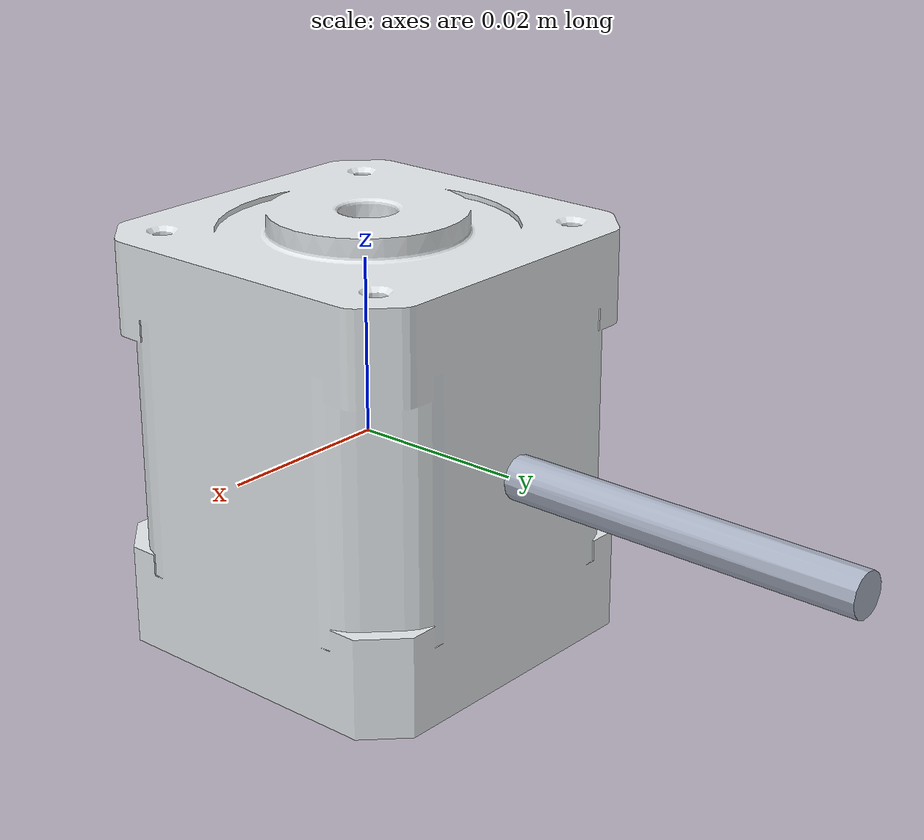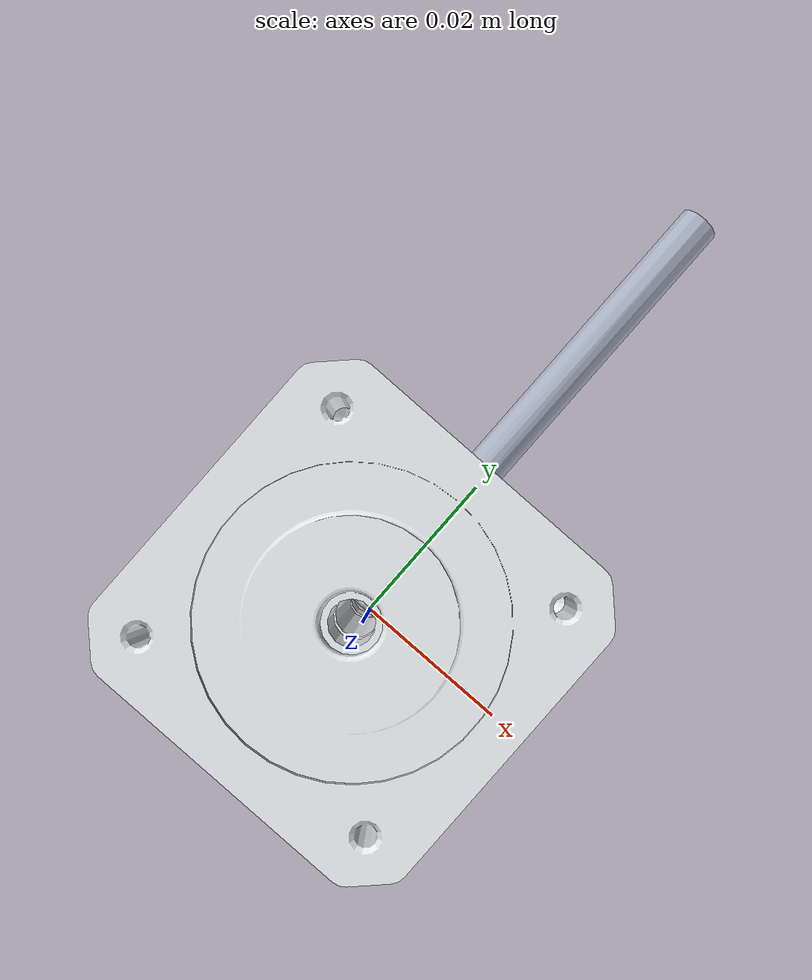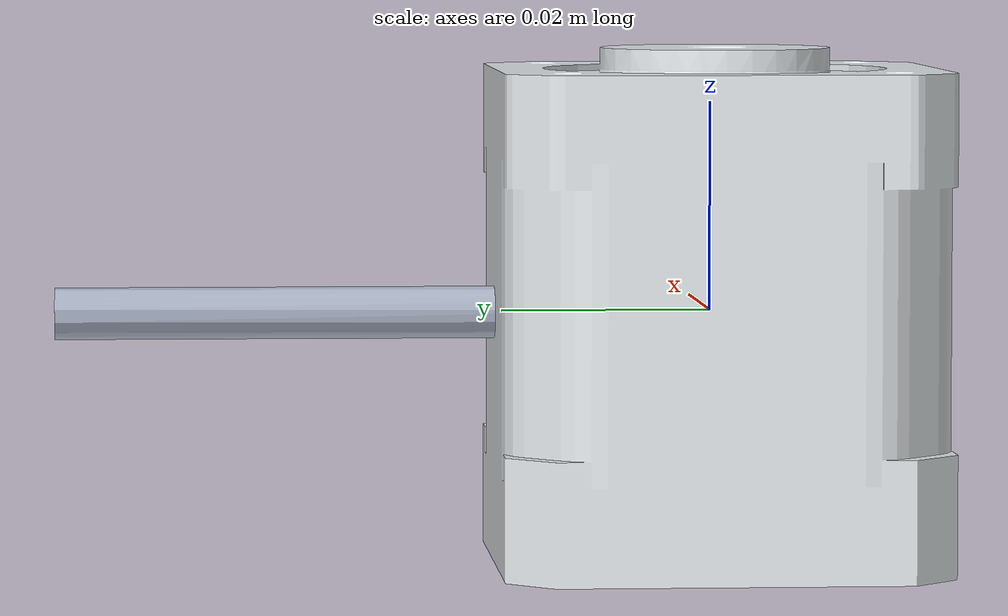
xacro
<?xml version='1.0'?>
<robot
  name="MotorSim" xmlns:xacro="http://www.ros.org/wiki/xacro" >
  <xacro:include filename="$(find MotorSim_description)/urdf/StepMotor.gazebo" />
  <link
    name="base_link">
    <inertial>
      <origin
        xyz="-0.000859097170120963 -0.00022159587417355 0.000341800187754871"
        rpy="0 0 0" />
      <mass
        value="0.302970386242336" />
      <inertia
        ixx="4.49769854527357E-05"
        ixy="-1.98854219257748E-21"
        ixz="-3.30872245021211E-24"
        iyy="1.70602116721423E-07"
        iyz="3.93076227085199E-21"
        izz="4.49769854527357E-05" />
    </inertial>
    <visual>
      <origin
        xyz="0 0 0"
        rpy="0 0 0" />
      <geometry>
        <mesh
          filename="$(find MotorSim_description)/meshes/base_link.STL" />
      </geometry>
      <material
        name="">
        <color
          rgba="0.898039215686275 0.917647058823529 0.929411764705882 1" />
      </material>
    </visual>
    <collision>
      <origin
        xyz="0 0 0"
        rpy="0 0 0" />
      <geometry>
        <mesh
          filename="$(find MotorSim_description)/meshes/base_link.STL" />
      </geometry>
    </collision>
  </link>
  <link
    name="Shaft">
    <inertial>
      <origin
        xyz="-0.00012249817140968 0.0141141740469127 2.16712378782197E-10"
        rpy="0 0 0" />
      <mass
        value="0.00509177024649685" />
      <inertia
        ixx="0"
        ixy="0"
        ixz="0"
        iyy="0"
        iyz="0"
        izz="0" />
    </inertial>
    <visual>
      <origin
        xyz="0 0 0"
        rpy="0 0 0" />
      <geometry>
        <mesh
          filename="$(find MotorSim_description)/meshes/Shaft.STL" />
      </geometry>
      <material
        name="">
        <color
          rgba="0.666666666666667 0.698039215686274 0.768627450980392 1" />
      </material>
    </visual>
    <collision>
      <origin
        xyz="0 0 0"
        rpy="0 0 0" />
      <geometry>
        <mesh
          filename="$(find MotorSim_description)/meshes/Shaft.STL" />
      </geometry>
    </collision>
  </link>
  <joint
    name="MotorJoint"
    type="continuous">
    <origin
      xyz="-0.0008591 -0.0003418 0"
      rpy="1.5708 0 0" />
    <parent
      link="base_link" />
    <child
      link="Shaft" />
    <axis
      xyz="0 1 0" />
  </joint>
</robot>
